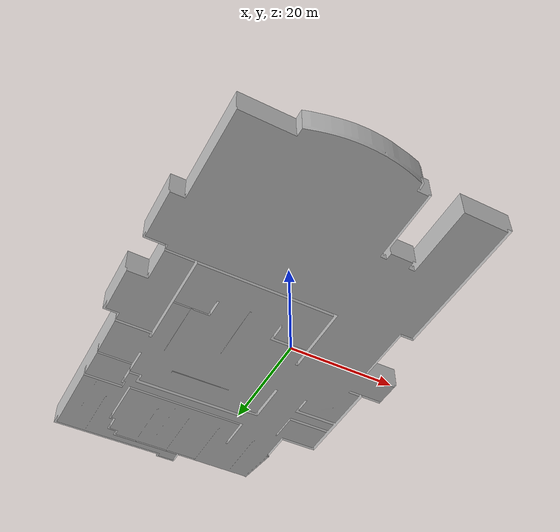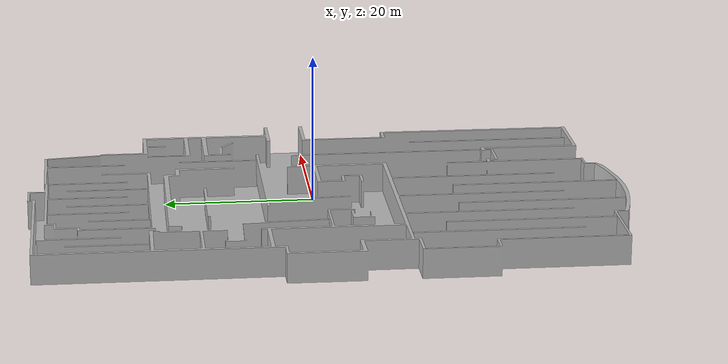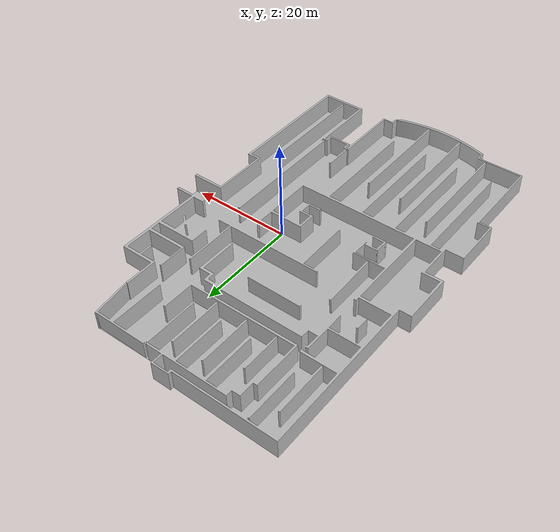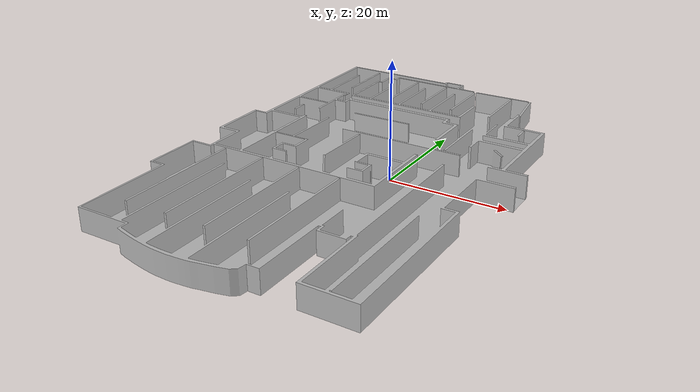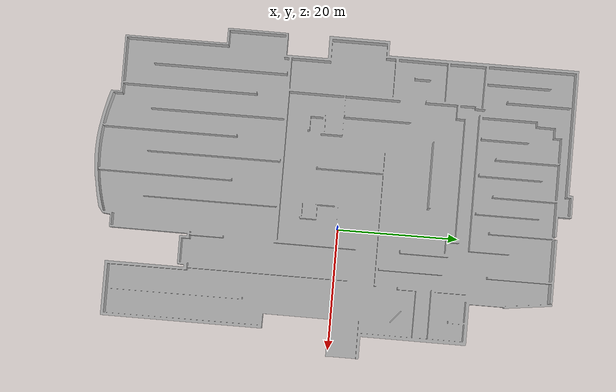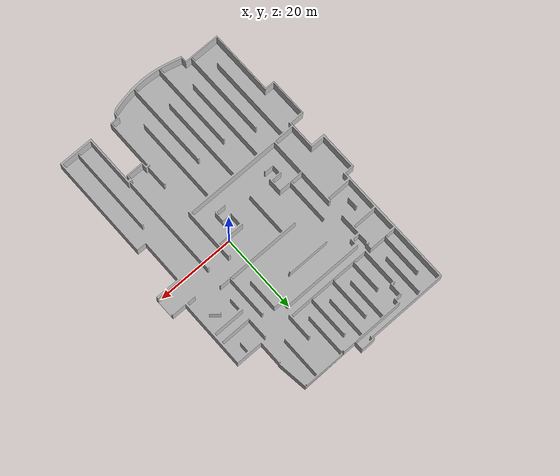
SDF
<?xml version="1.0" ?>
<sdf version="1.5">
  <model name="RC2016VRL_event1">
    <static>true</static>
    <pose>0 0 0 0 0 0</pose>
    <link name="link">
      <collision name="collision">
        <geometry>
          <mesh>
            <uri>model://RC2016VRL_event1/event1.dae</uri>
            <scale>1.32 1.32 0.66</scale>
          </mesh>
        </geometry>
      </collision>
      <visual name="visual">
        <geometry>
          <mesh>
            <uri>model://RC2016VRL_event1/event1.dae</uri>
            <scale>1.32 1.32 0.66</scale>
          </mesh>
        </geometry>
        <cast_shadows>false</cast_shadows>
      </visual>
    </link>
  </model>
</sdf>
